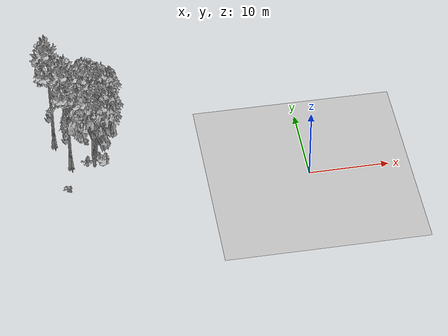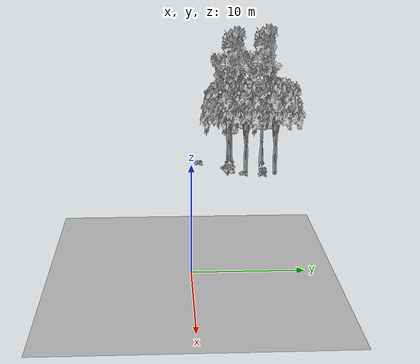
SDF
<sdf version="1.7">
 <world name="default">
  <model name="ground_plane">
   <static>1</static>
   <link name="link">
    <collision name="collision">
     <pose>-50 0 0 0 -0 0</pose>
     <geometry><plane><normal>0 0 1</normal><size>80 80</size></plane></geometry>
     <surface><contact><ode><min_depth>0.01</min_depth><max_vel>0</max_vel></ode></contact></surface>
    </collision>
    <visual name="grass">
     <cast_shadows>0</cast_shadows>
     <geometry>
      <mesh>
       <scale>0.46714285714285714 0.46714285714285714 0.1</scale>
       <uri>file://grass_plane/meshes/grass_plane.dae</uri>
      </mesh>
     </geometry>
    </visual>
   </link>
  </model>
  <model name="Tree 18">
   <static>1</static>
   <pose>-28.897538076674838 5.994807047997995 0 1.57079 -0 0</pose>
   <link name="link">
    <collision name="collision">
     <geometry><mesh><scale>3.5 5 3.5</scale><uri>model://tree_9/meshes/tree_9.obj</uri></mesh></geometry>
    </collision>
    <visual name="visual">
     <geometry><mesh><scale>3.5 5 3.5</scale><uri>model://tree_9/meshes/tree_9.obj</uri></mesh></geometry>
    </visual>
   </link>
  </model>
  <model name="Tree 148">
   <static>1</static>
   <pose>-30.55635084287313 10.083482426207553 0 1.57079 -0 0</pose>
   <link name="link">
    <collision name="collision">
     <geometry><mesh><scale>3.5 5 3.5</scale><uri>model://tree_9/meshes/tree_9.obj</uri></mesh></geometry>
    </collision>
    <visual name="visual">
     <geometry><mesh><scale>3.5 5 3.5</scale><uri>model://tree_9/meshes/tree_9.obj</uri></mesh></geometry>
    </visual>
   </link>
  </model>
  <model name="Tree 335">
   <static>1</static>
   <pose>-25.421490937034807 11.071474962918366 0 1.57079 -0 0</pose>
   <link name="link">
    <collision name="collision">
     <geometry><mesh><scale>3.5 5 3.5</scale><uri>model://tree_2/meshes/tree_2.obj</uri></mesh></geometry>
    </collision>
    <visual name="visual">
     <geometry><mesh><scale>3.5 5 3.5</scale><uri>model://tree_2/meshes/tree_2.obj</uri></mesh></geometry>
    </visual>
   </link>
  </model>
  <model name="Tree 407">
   <static>1</static>
   <pose>-26.088552509215436 5.456314492410009 0 1.57079 -0 0</pose>
   <link name="link">
    <collision name="collision">
     <geometry><mesh><scale>3.5 5 3.5</scale><uri>model://tree_2/meshes/tree_2.obj</uri></mesh></geometry>
    </collision>
    <visual name="visual">
     <geometry><mesh><scale>3.5 5 3.5</scale><uri>model://tree_2/meshes/tree_2.obj</uri></mesh></geometry>
    </visual>
   </link>
  </model>
  <model name="Tree 576">
   <static>1</static>
   <pose>-25.654900670616456 7.559501883889148 0 1.57079 -0 0</pose>
   <link name="link">
    <collision name="collision">
     <geometry><mesh><scale>3.5 5 3.5</scale><uri>model://tree_2/meshes/tree_2.obj</uri></mesh></geometry>
    </collision>
    <visual name="visual">
     <geometry><mesh><scale>3.5 5 3.5</scale><uri>model://tree_2/meshes/tree_2.obj</uri></mesh></geometry>
    </visual>
   </link>
  </model>
  <model name="Bush 3">
   <static>1</static>
   <pose>-24.970563181577912 5.2853014499621835 0 1.57079 -0 0</pose>
   <link name="link">
    <collision name="collision">
     <geometry><mesh><scale>2 2 2</scale><uri>model://bush_1/meshes/bush_1.obj</uri></mesh></geometry>
     <surface><contact><collide_without_contact>false</collide_without_contact></contact></surface>
    </collision>
    <visual name="visual">
     <geometry><mesh><scale>2 2 2</scale><uri>model://bush_1/meshes/bush_1.obj</uri></mesh></geometry>
    </visual>
   </link>
  </model>
  <model name="Bush 71">
   <static>1</static>
   <pose>-25.215273444160708 9.547683525492594 0 1.57079 -0 0</pose>
   <link name="link">
    <collision name="collision">
     <geometry><mesh><scale>2 2 2</scale><uri>model://bush_2/meshes/bush_2.obj</uri></mesh></geometry>
     <surface><contact><collide_without_contact>false</collide_without_contact></contact></surface>
    </collision>
    <visual name="visual">
     <geometry><mesh><scale>2 2 2</scale><uri>model://bush_2/meshes/bush_2.obj</uri></mesh></geometry>
    </visual>
   </link>
  </model>
  <model name="Bush 220">
   <static>1</static>
   <pose>-26.89246433151331 5.6350706578941185 0 1.57079 -0 0</pose>
   <link name="link">
    <collision name="collision">
     <geometry><mesh><scale>2 2 2</scale><uri>model://bush_4/meshes/bush_4.obj</uri></mesh></geometry>
     <surface><contact><collide_without_contact>false</collide_without_contact></contact></surface>
    </collision>
    <visual name="visual">
     <geometry><mesh><scale>2 2 2</scale><uri>model://bush_4/meshes/bush_4.obj</uri></mesh></geometry>
    </visual>
   </link>
  </model>
  <model name="Bush 367">
   <static>1</static>
   <pose>-26.750592980023654 9.80706258148573 0 1.57079 -0 0</pose>
   <link name="link">
    <collision name="collision">
     <geometry><mesh><scale>2 2 2</scale><uri>model://bush_2/meshes/bush_2.obj</uri></mesh></geometry>
     <surface><contact><collide_without_contact>false</collide_without_contact></contact></surface>
    </collision>
    <visual name="visual">
     <geometry><mesh><scale>2 2 2</scale><uri>model://bush_2/meshes/bush_2.obj</uri></mesh></geometry>
    </visual>
   </link>
  </model>
  <model name="Bush 434">
   <static>1</static>
   <pose>-25.555291605308913 7.282259617616546 0 1.57079 -0 0</pose>
   <link name="link">
    <collision name="collision">
     <geometry><mesh><scale>2 2 2</scale><uri>model://bush_2/meshes/bush_2.obj</uri></mesh></geometry>
     <surface><contact><collide_without_contact>false</collide_without_contact></contact></surface>
    </collision>
    <visual name="visual">
     <geometry><mesh><scale>2 2 2</scale><uri>model://bush_2/meshes/bush_2.obj</uri></mesh></geometry>
    </visual>
   </link>
  </model>
  <model name="Bush 602">
   <static>1</static>
   <pose>-29.72770152095587 1.9832291563079352 0 1.57079 -0 0</pose>
   <link name="link">
    <collision name="collision">
     <geometry><mesh><scale>2 2 2</scale><uri>model://bush_2/meshes/bush_2.obj</uri></mesh></geometry>
     <surface><contact><collide_without_contact>false</collide_without_contact></contact></surface>
    </collision>
    <visual name="visual">
     <geometry><mesh><scale>2 2 2</scale><uri>model://bush_2/meshes/bush_2.obj</uri></mesh></geometry>
    </visual>
   </link>
  </model>
 </world>
</sdf>
